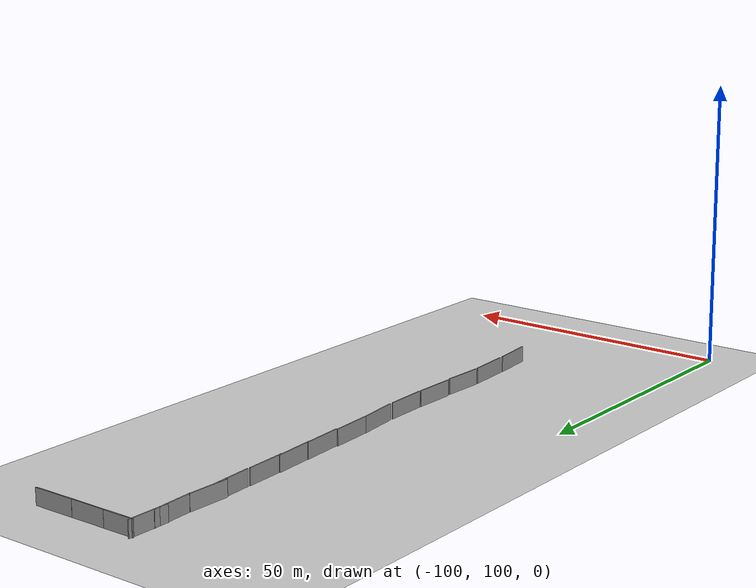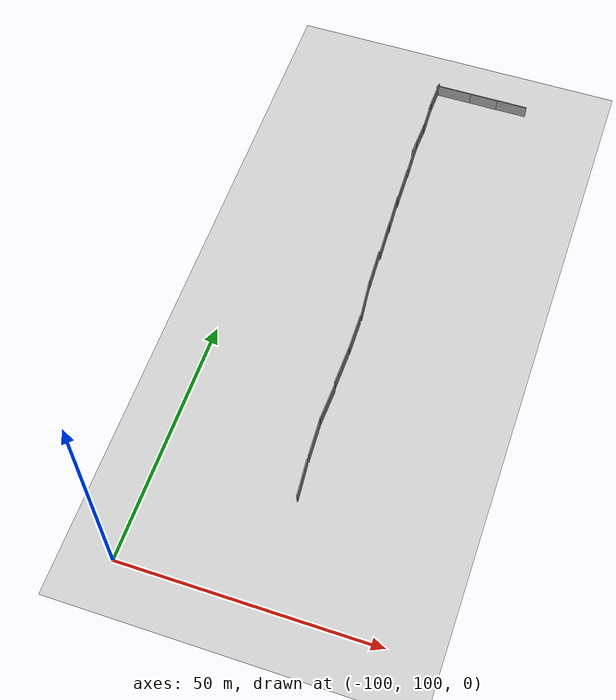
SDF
<sdf version="1.4">
 <world name="default">
  <model name="ground_plane">
   <static>1</static>
   <link name="link">
    <collision name="collision">
     <geometry><plane><normal>0 0 1</normal><size>100 100</size></plane></geometry>
     <surface><friction><ode><mu>100</mu><mu2>50</mu2></ode></friction></surface>
    </collision>
    <visual name="visual">
     <cast_shadows>0</cast_shadows>
     <geometry><plane><normal>0 0 1</normal><size>100 100</size></plane></geometry>
     <material>
      <script><uri>file://media/materials/scripts/gazebo.material</uri><name>Gazebo/Grey</name></script>
     </material>
    </visual>
    <velocity_decay><linear>0</linear><angular>0</angular></velocity_decay>
   </link>
  </model>
  <model name="grey_wall_4">
   <static>1</static>
   <link name="link">
    <pose>0 0 1.4 0 -0 0</pose>
    <collision name="collision"><geometry><box><size>7.5 0.2 2.8</size></box></geometry></collision>
    <visual name="visual">
     <cast_shadows>0</cast_shadows>
     <geometry><box><size>7.5 0.2 2.8</size></box></geometry>
     <material>
      <script>
       <uri>model://grey_wall/materials/scripts</uri>
       <uri>model://grey_wall/materials/textures</uri>
       <name>vrc/grey_wall</name>
      </script>
     </material>
    </visual>
    <velocity_decay><linear>0</linear><angular>0</angular></velocity_decay>
   </link>
   <pose>-76.1608 200.541 0 0 0 -1.51664</pose>
  </model>
  <model name="grey_wall_5">
   <static>1</static>
   <link name="link">
    <pose>0 0 1.4 0 -0 0</pose>
    <collision name="collision"><geometry><box><size>7.5 0.2 2.8</size></box></geometry></collision>
    <visual name="visual">
     <cast_shadows>0</cast_shadows>
     <geometry><box><size>7.5 0.2 2.8</size></box></geometry>
     <material>
      <script>
       <uri>model://grey_wall/materials/scripts</uri>
       <uri>model://grey_wall/materials/textures</uri>
       <name>vrc/grey_wall</name>
      </script>
     </material>
    </visual>
    <velocity_decay><linear>0</linear><angular>0</angular></velocity_decay>
   </link>
   <pose>-75.8818 192.67 0 0 0 -1.5318</pose>
  </model>
  <model name="grey_wall_6">
   <static>1</static>
   <link name="link">
    <pose>0 0 1.4 0 -0 0</pose>
    <collision name="collision"><geometry><box><size>7.5 0.2 2.8</size></box></geometry></collision>
    <visual name="visual">
     <cast_shadows>0</cast_shadows>
     <geometry><box><size>7.5 0.2 2.8</size></box></geometry>
     <material>
      <script>
       <uri>model://grey_wall/materials/scripts</uri>
       <uri>model://grey_wall/materials/textures</uri>
       <name>vrc/grey_wall</name>
      </script>
     </material>
    </visual>
    <velocity_decay><linear>0</linear><angular>0</angular></velocity_decay>
   </link>
   <pose>-75.6579 185.97 0 0 0 -1.50708</pose>
  </model>
  <model name="grey_wall_7">
   <static>1</static>
   <link name="link">
    <pose>0 0 1.4 0 -0 0</pose>
    <collision name="collision"><geometry><box><size>7.5 0.2 2.8</size></box></geometry></collision>
    <visual name="visual">
     <cast_shadows>0</cast_shadows>
     <geometry><box><size>7.5 0.2 2.8</size></box></geometry>
     <material>
      <script>
       <uri>model://grey_wall/materials/scripts</uri>
       <uri>model://grey_wall/materials/textures</uri>
       <name>vrc/grey_wall</name>
      </script>
     </material>
    </visual>
    <velocity_decay><linear>0</linear><angular>0</angular></velocity_decay>
   </link>
   <pose>-75.3209 179.09 0 0 0 -1.51077</pose>
  </model>
  <model name="grey_wall_8">
   <static>1</static>
   <link name="link">
    <pose>0 0 1.4 0 -0 0</pose>
    <collision name="collision"><geometry><box><size>7.5 0.2 2.8</size></box></geometry></collision>
    <visual name="visual">
     <cast_shadows>0</cast_shadows>
     <geometry><box><size>7.5 0.2 2.8</size></box></geometry>
     <material>
      <script>
       <uri>model://grey_wall/materials/scripts</uri>
       <uri>model://grey_wall/materials/textures</uri>
       <name>vrc/grey_wall</name>
      </script>
     </material>
    </visual>
    <velocity_decay><linear>0</linear><angular>0</angular></velocity_decay>
   </link>
   <pose>-75.1405 171.723 0 0 0 -1.5146</pose>
  </model>
  <model name="grey_wall_9">
   <static>1</static>
   <link name="link">
    <pose>0 0 1.4 0 -0 0</pose>
    <collision name="collision"><geometry><box><size>7.5 0.2 2.8</size></box></geometry></collision>
    <visual name="visual">
     <cast_shadows>0</cast_shadows>
     <geometry><box><size>7.5 0.2 2.8</size></box></geometry>
     <material>
      <script>
       <uri>model://grey_wall/materials/scripts</uri>
       <uri>model://grey_wall/materials/textures</uri>
       <name>vrc/grey_wall</name>
      </script>
     </material>
    </visual>
    <velocity_decay><linear>0</linear><angular>0</angular></velocity_decay>
   </link>
   <pose>-74.5629 164.279 0 0 0 -1.4614</pose>
  </model>
  <model name="grey_wall_10">
   <static>1</static>
   <link name="link">
    <pose>0 0 1.4 0 -0 0</pose>
    <collision name="collision"><geometry><box><size>7.5 0.2 2.8</size></box></geometry></collision>
    <visual name="visual">
     <cast_shadows>0</cast_shadows>
     <geometry><box><size>7.5 0.2 2.8</size></box></geometry>
     <material>
      <script>
       <uri>model://grey_wall/materials/scripts</uri>
       <uri>model://grey_wall/materials/textures</uri>
       <name>vrc/grey_wall</name>
      </script>
     </material>
    </visual>
    <velocity_decay><linear>0</linear><angular>0</angular></velocity_decay>
   </link>
   <pose>-74.1024 156.293 0 0 0 -1.54552</pose>
  </model>
  <model name="grey_wall_11">
   <static>1</static>
   <link name="link">
    <pose>0 0 1.4 0 -0 0</pose>
    <collision name="collision"><geometry><box><size>7.5 0.2 2.8</size></box></geometry></collision>
    <visual name="visual">
     <cast_shadows>0</cast_shadows>
     <geometry><box><size>7.5 0.2 2.8</size></box></geometry>
     <material>
      <script>
       <uri>model://grey_wall/materials/scripts</uri>
       <uri>model://grey_wall/materials/textures</uri>
       <name>vrc/grey_wall</name>
      </script>
     </material>
    </visual>
    <velocity_decay><linear>0</linear><angular>0</angular></velocity_decay>
   </link>
   <pose>-74.1104 148.456 0 0 0 -1.58822</pose>
  </model>
  <model name="grey_wall_12">
   <static>1</static>
   <link name="link">
    <pose>0 0 1.4 0 -0 0</pose>
    <collision name="collision"><geometry><box><size>7.5 0.2 2.8</size></box></geometry></collision>
    <visual name="visual">
     <cast_shadows>0</cast_shadows>
     <geometry><box><size>7.5 0.2 2.8</size></box></geometry>
     <material>
      <script>
       <uri>model://grey_wall/materials/scripts</uri>
       <uri>model://grey_wall/materials/textures</uri>
       <name>vrc/grey_wall</name>
      </script>
     </material>
    </visual>
    <velocity_decay><linear>0</linear><angular>0</angular></velocity_decay>
   </link>
   <pose>-74.1605 140.333 0 0 0 -1.60894</pose>
  </model>
  <model name="grey_wall_13">
   <static>1</static>
   <link name="link">
    <pose>0 0 1.4 0 -0 0</pose>
    <collision name="collision"><geometry><box><size>7.5 0.2 2.8</size></box></geometry></collision>
    <visual name="visual">
     <cast_shadows>0</cast_shadows>
     <geometry><box><size>7.5 0.2 2.8</size></box></geometry>
     <material>
      <script>
       <uri>model://grey_wall/materials/scripts</uri>
       <uri>model://grey_wall/materials/textures</uri>
       <name>vrc/grey_wall</name>
      </script>
     </material>
    </visual>
    <velocity_decay><linear>0</linear><angular>0</angular></velocity_decay>
   </link>
   <pose>-74.0532 132.481 0 0 0 -1.51366</pose>
  </model>
  <model name="grey_wall_14">
   <static>1</static>
   <link name="link">
    <pose>0 0 1.4 0 -0 0</pose>
    <collision name="collision"><geometry><box><size>7.5 0.2 2.8</size></box></geometry></collision>
    <visual name="visual">
     <cast_shadows>0</cast_shadows>
     <geometry><box><size>7.5 0.2 2.8</size></box></geometry>
     <material>
      <script>
       <uri>model://grey_wall/materials/scripts</uri>
       <uri>model://grey_wall/materials/textures</uri>
       <name>vrc/grey_wall</name>
      </script>
     </material>
    </visual>
    <velocity_decay><linear>0</linear><angular>0</angular></velocity_decay>
   </link>
   <pose>-73.5097 124.393 0 0 0 -1.47887</pose>
  </model>
  <model name="grey_wall_46">
   <static>1</static>
   <link name="link">
    <pose>0 0 1.4 0 -0 0</pose>
    <collision name="collision"><geometry><box><size>7.5 0.2 2.8</size></box></geometry></collision>
    <visual name="visual">
     <cast_shadows>0</cast_shadows>
     <geometry><box><size>7.5 0.2 2.8</size></box></geometry>
     <material>
      <script>
       <uri>model://grey_wall/materials/scripts</uri>
       <uri>model://grey_wall/materials/textures</uri>
       <name>vrc/grey_wall</name>
      </script>
     </material>
    </visual>
    <velocity_decay><linear>0</linear><angular>0</angular></velocity_decay>
   </link>
   <pose>-60.7482 220.647 0 0 -0 0</pose>
  </model>
  <model name="grey_wall_47">
   <static>1</static>
   <link name="link">
    <pose>0 0 1.4 0 -0 0</pose>
    <collision name="collision"><geometry><box><size>7.5 0.2 2.8</size></box></geometry></collision>
    <visual name="visual">
     <cast_shadows>0</cast_shadows>
     <geometry><box><size>7.5 0.2 2.8</size></box></geometry>
     <material>
      <script>
       <uri>model://grey_wall/materials/scripts</uri>
       <uri>model://grey_wall/materials/textures</uri>
       <name>vrc/grey_wall</name>
      </script>
     </material>
    </visual>
    <velocity_decay><linear>0</linear><angular>0</angular></velocity_decay>
   </link>
   <pose>-67.1582 220.621 0 0 -0 0</pose>
  </model>
  <model name="grey_wall_48">
   <static>1</static>
   <link name="link">
    <pose>0 0 1.4 0 -0 0</pose>
    <collision name="collision"><geometry><box><size>7.5 0.2 2.8</size></box></geometry></collision>
    <visual name="visual">
     <cast_shadows>0</cast_shadows>
     <geometry><box><size>7.5 0.2 2.8</size></box></geometry>
     <material>
      <script>
       <uri>model://grey_wall/materials/scripts</uri>
       <uri>model://grey_wall/materials/textures</uri>
       <name>vrc/grey_wall</name>
      </script>
     </material>
    </visual>
    <velocity_decay><linear>0</linear><angular>0</angular></velocity_decay>
   </link>
   <pose>-72.9286 220.618 0 0 -0 0</pose>
  </model>
  <model name="grey_wall_50">
   <static>1</static>
   <link name="link">
    <pose>0 0 1.4 0 -0 0</pose>
    <collision name="collision"><geometry><box><size>7.5 0.2 2.8</size></box></geometry></collision>
    <visual name="visual">
     <cast_shadows>0</cast_shadows>
     <geometry><box><size>7.5 0.2 2.8</size></box></geometry>
     <material>
      <script>
       <uri>model://grey_wall/materials/scripts</uri>
       <uri>model://grey_wall/materials/textures</uri>
       <name>vrc/grey_wall</name>
      </script>
     </material>
    </visual>
    <velocity_decay><linear>0</linear><angular>0</angular></velocity_decay>
   </link>
   <pose>-76.3449 205.48 0 0 0 -1.60769</pose>
  </model>
  <model name="grey_wall_131">
   <static>1</static>
   <link name="link">
    <pose>0 0 1.4 0 -0 0</pose>
    <collision name="collision"><geometry><box><size>7.5 0.2 2.8</size></box></geometry></collision>
    <visual name="visual">
     <cast_shadows>0</cast_shadows>
     <geometry><box><size>7.5 0.2 2.8</size></box></geometry>
     <material>
      <script>
       <uri>model://grey_wall/materials/scripts</uri>
       <uri>model://grey_wall/materials/textures</uri>
       <name>vrc/grey_wall</name>
      </script>
     </material>
    </visual>
    <velocity_decay><linear>0</linear><angular>0</angular></velocity_decay>
   </link>
   <pose>-76.3372 212.719 0 0 -0 1.61856</pose>
  </model>
  <model name="grey_wall_134">
   <static>1</static>
   <link name="link">
    <pose>0 0 1.4 0 -0 0</pose>
    <collision name="collision"><geometry><box><size>7.5 0.2 2.8</size></box></geometry></collision>
    <visual name="visual">
     <cast_shadows>0</cast_shadows>
     <geometry><box><size>7.5 0.2 2.8</size></box></geometry>
     <material>
      <script>
       <uri>model://grey_wall/materials/scripts</uri>
       <uri>model://grey_wall/materials/textures</uri>
       <name>vrc/grey_wall</name>
      </script>
     </material>
    </visual>
    <velocity_decay><linear>0</linear><angular>0</angular></velocity_decay>
   </link>
   <pose>-76.4265 217.495 0 0 -0 1.55257</pose>
  </model>
 </world>
</sdf>
